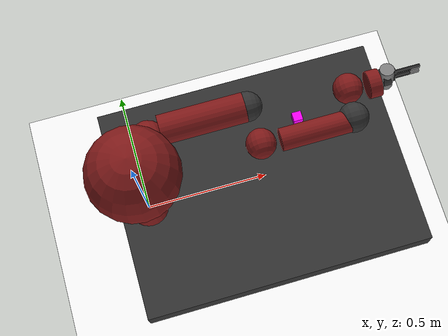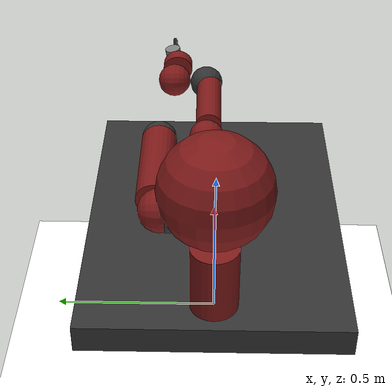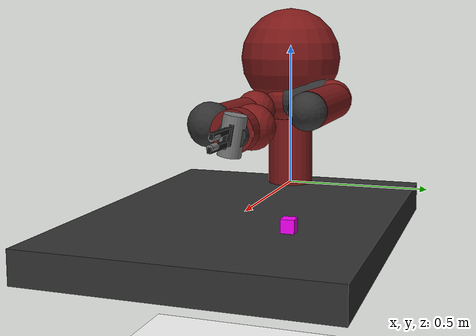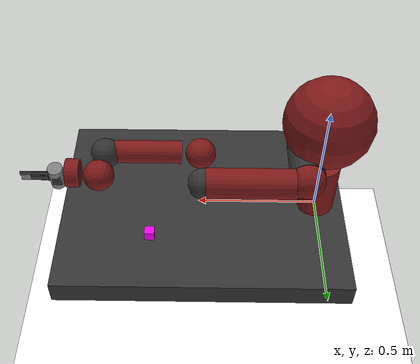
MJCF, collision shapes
<mujoco>
  <compiler angle="radian" meshdir="meshes/" />
  <asset>
    <include file="shared_assets.xml"></include>
  </asset>
  <default>
    <include file="shared.xml"></include>
  </default>
  <equality>
        <weld body1="mocap" body2="right_gripper_base" solimp="0.95 0.99 0.001" solref="0.001 1"></weld>
  </equality>

  <worldbody>
    <light directional="true" ambient="0.2 0.2 0.2" diffuse="0.8 0.8 0.8" specular="0.3 0.3 0.3" castshadow="false" pos="0 0 4" dir="0 0 -1" name="light0"></light>
    <geom name="floor0" pos="0.0 0 -0.8057" size="1.4 1.2 1" type="plane" condim="3" material="floor_mat"/>

    <include file="sawyer_robot.xml"/>
    <body mocap="true" name="mocap" pos="0.2369680365278436 0.7377722688452103 0.30233579064225752">
      <geom conaffinity="0" contype="0" pos="0 0 0" rgba="1.0 1.0 1.0 0.0" size="0.02 0.02 0.02" type="box"></geom>
    </body>

    <body name="object0" pos="0.70 0.2 0.021">
      <joint name="object0:joint" type="free" damping="0.01"></joint>
      <geom size="0.02 0.02 0.02" type="box" condim="3" name="object0" material="block_mat" mass="0.1" rgba="1 0 1 1"></geom>
    </body>

    <body name="target_pos" pos="0 0 0">
      <site name="target_pos" pos="0 0 0" size="0.02 0.02 0.02" rgba="1 0 0 1" type="sphere"></site>
    </body>
  </worldbody>

  <actuator>
    <motor gear="10" joint="r_gripper_l_finger_joint" name="slide_l_claw"/>
    <motor gear="10" joint="r_gripper_r_finger_joint" name="slide_r_claw"/>
    <motor joint="right_j0" ctrlrange="-100.0 100.0" ctrllimited="false" gear="150"/>
    <motor joint="right_j1" ctrlrange="-100.0 100.0" ctrllimited="false" gear="100"/>
    <motor joint="right_j2" ctrlrange="-100.0 100.0" ctrllimited="false" gear="120"/>
    <motor joint="right_j3" ctrlrange="-100.0 100.0" ctrllimited="false" gear="150"/>
    <motor joint="right_j4" ctrlrange="-100.0 100.0" ctrllimited="false" gear="150"/>
    <motor joint="right_j5" ctrlrange="-100.0 100.0" ctrllimited="false" gear="150"/>
    <motor joint="right_j6" ctrlrange="-100.0 100.0" ctrllimited="false" gear="150"/>
  </actuator>

</mujoco>

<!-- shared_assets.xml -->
<mujoco>
  <texture type="skybox" builtin="gradient" rgb1="0.44 0.85 0.56" rgb2="0.46 0.87 0.58" width="32" height="32"></texture>
  <material name="floor_mat" specular="0" shininess="0.5" reflectance="0" rgba="1 1 1 1"></material>
  <material name="block_mat" specular="0" shininess="0.5" reflectance="0" rgba="0.2 0.2 0.2 1"></material>
  <mesh name="base" file="base.STL" />
  <mesh name="l0" file="l0.STL" />
  <mesh name="head" file="head.STL" />
  <mesh name="l1" file="l1.STL" />
  <mesh name="l2" file="l2.STL" />
  <mesh name="l3" file="l3.STL" />
  <mesh name="l4" file="l4.STL" />
  <mesh name="l5" file="l5.STL" />
  <mesh name="l6" file="l6.STL" />
  <mesh name="half_round_tip" file="half_round_tip.STL" />
  <mesh name="electric_gripper_base" file="electric_gripper_base.STL" />
  <mesh name="extended_narrow" file="extended_narrow.STL"/>
  <mesh name="paddle_tip" file="paddle_tip.STL"/>
  <mesh name="yellow_bin_v1" file="yellow_bin_v1.STL"/>
  <mesh name="red_bin_v1" file="red_bin_v1.STL"/>
  <mesh name="green_bin_v1" file="green_bin_v1.STL"/>
  <mesh name="pedestal_table" file="pedestal_table.STL"/>
</mujoco>

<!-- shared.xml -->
<mujoco>
  <joint damping="0.2" stiffness="0" armature=".01" user="0"/>
  <geom solref="0.008 1" solimp="0.999 0.999 0." margin="0.001" user="0"/>
  <default class="viz">
    <geom contype="0" conaffinity="0" group="1" type="mesh"/>
  </default>
  <motor ctrllimited="true" ctrlrange="-1 1"/>
  <position ctrllimited="true"/>
  <default class='0'>
    <geom friction="1 0.005 0.001" rgba=".75 .6 .5 1" contype="1" conaffinity="0"/>
  </default>
  <default class='1'>
    <geom friction="1 0.005 0.001" rgba=".7 .6 .55 1" contype="1" conaffinity="0"/>
  </default>
  <default class='arm'>
    <joint damping="5"/>
  </default>
</mujoco>

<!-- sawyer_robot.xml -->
<mujoco>
    <body name="pedestal_table" pos="0.482 0 -0.05">
      <geom pos="0 0 0" quat="0.707 0 0 0.707" type="mesh" contype="0" conaffinity="0" group="1" rgba="0.2 0.2 0.2 1" mesh="pedestal_table" />
      <geom name="table" size="0.6 0.45 0.05" pos="0 0 0" type="box" rgba="0.2 0.2 0.2 0" />
    <body name="right_arm_base_link" pos="-0.482 0 0.05">
      <geom type="mesh" contype="0" conaffinity="0" group="1" rgba="0.5 0.1 0.1 1" mesh="base" />
      <geom size="0.08 0.12" pos="0 0 0.12" type="cylinder" rgba="0.5 0.1 0.1 0" />
      <body name="right_l0" pos="0 0 0.08">
        <joint name="right_j0" pos="0 0 0" axis="0 0 1" limited="true" range="-3.0503 3.0503" damping="10"/>
        <geom type="mesh" contype="0" conaffinity="0" group="1" rgba="0.5 0.1 0.1 1" mesh="l0" />
        <geom size="0.07" pos="0.08 0 0.23" rgba="0.5 0.1 0.1 0" />
        <body name="head" pos="0 0 0.2965">
          <geom type="mesh" contype="0" conaffinity="0" group="1" rgba="0.5 0.1 0.1 1" mesh="head" />
          <geom size="0.18" pos="0 0 0.08" rgba="0.5 0.1 0.1 0" />
          <body name="screen" pos="0.03 0 0.105" quat="0.5 0.5 0.5 0.5">
            <geom size="0.12 0.07 0.001" type="box" contype="0" conaffinity="0" group="1" rgba="0.2 0.2 0.2 0" />
            <geom size="0.001" rgba="0.2 0.2 0.2 0" />
          </body>
          <body name="head_camera" pos="0.0228027 0 0.216572" quat="0.342813 -0.618449 0.618449 -0.342813">
            <site name="headsite" pos="0 0 0" size="0.01" />
          </body>
        </body>
        <body name="right_torso_itb" pos="-0.055 0 0.22" quat="0.707107 0 -0.707107 0">
        </body>
        <body name="right_l1" pos="0.081 0.05 0.237" quat="0.5 -0.5 0.5 0.5">
          <joint name="right_j1" pos="0 0 0" axis="0 0 1" limited="true" range="-3.8095 2.2736" damping="10"/>
          <geom type="mesh" contype="0" conaffinity="0" group="1" rgba="0.5 0.1 0.1 1" mesh="l1" />
          <geom size="0.07" pos="0 0 0.1225" rgba="0.5 0.1 0.1 0" />
          <body name="right_l2" pos="0 -0.14 0.1425" quat="0.707107 0.707107 0 0">
            <joint name="right_j2" pos="0 0 0" axis="0 0 1" limited="true" range="-3.0426 3.0426" damping="10"/>
            <geom type="mesh" contype="0" conaffinity="0" group="1" rgba="0.5 0.1 0.1 1" mesh="l2" />
            <geom size="0.06 0.17" pos="0 0 0.08" type="cylinder" rgba="0.5 0.1 0.1 0" />
            <body name="right_l3" pos="0 -0.042 0.26" quat="0.707107 -0.707107 0 0">
              <site name="armsite" pos="0 0 0" size="0.01" />
              <joint name="right_j3" pos="0 0 0" axis="0 0 1" limited="true" range="-3.0439 3.0439" damping="10"/>
              <geom type="mesh" contype="0" conaffinity="0" group="1" rgba="0.5 0.1 0.1 1" mesh="l3" />
              <geom size="0.06" pos="0 -0.01 -0.12" rgba="0.5 0.1 0.1 0" />
              <body name="right_l4" pos="0 -0.125 -0.1265" quat="0.707107 0.707107 0 0">
                <joint name="right_j4" pos="0 0 0" axis="0 0 1" limited="true" range="-2.9761 2.9761" damping="10" />
                <geom type="mesh" contype="0" conaffinity="0" group="1" rgba="0.5 0.1 0.1 1" mesh="l4" />
                <geom size="0.045 0.15" pos="0 0 0.11" type="cylinder" rgba="0.5 0.1 0.1 0" />
                <body name="right_arm_itb" pos="-0.055 0 0.075" quat="0.707107 0 -0.707107 0">
                </body>
                <body name="right_l5" pos="0 0.031 0.275" quat="0.707107 -0.707107 0 0">
                  <joint name="right_j5" pos="0 0 0" axis="0 0 1" limited="true" range="-2.9761 2.9761" damping="10"/>
                  <geom type="mesh" contype="0" conaffinity="0" group="1" rgba="0.5 0.1 0.1 1" mesh="l5" />
                  <geom size="0.06" pos="0 0 0.1" rgba="0.5 0.1 0.1 0" />
                  <body name="right_hand_camera" pos="0.039552 -0.033 0.0695" quat="0.707107 0 0.707107 0">
                  </body>
                  <body name="right_wrist" pos="0 0 0.10541" quat="0.707107 0.707107 0 0">
                  </body>
                  <body name="right_l6" pos="0 -0.11 0.1053" quat="0.0616248 0.06163 -0.704416 0.704416">
                    <joint name="right_j6" pos="0 0 0" axis="0 0 1" limited="true" range="-4.7124 4.7124" damping="10"/>
                    <geom type="mesh" contype="0" conaffinity="0" group="1" rgba="0.5 0.1 0.1 1" mesh="l6" />
                    <geom size="0.055 0.025" pos="0 0.015 -0.01" type="cylinder" rgba="0.5 0.1 0.1 0" />
                    <body name="right_hand" pos="0 0 0.0245" quat="0.707107 0 0 0.707107">
                      <geom size="0.035 0.015" pos="0 0 0.02" type="cylinder" rgba="0.2 0.2 0.2 0"/>

<!--  ================= BEGIN GRIPPER ================= /-->
                                                        <!--site name="endeffector" pos="0 0 0" size="0.01" /-->
                                                    <!--/body-->
                                                <!--/body-->
                      <body name="right_gripper_base" pos="0 0 0.025">
                        <geom quat="0 0 0.707107 0.707107" class="viz" mesh="electric_gripper_base" />
                        <geom size="0.029 0.05" quat="0 0 0.707107 0.707107" type="cylinder" />
                        <body name="r_gripper_l_finger" pos="0 -0.0015 0.02">
                          <joint name="r_gripper_l_finger_joint" pos="0 0 0" axis="0 1 0" type="slide" range="0 0.020833" limited="true" damping="1000"/>
                          <geom class="viz" mesh="extended_narrow" euler="1.57 1.57 0" rgba="0.1 0.1 0.1 1"/>
                          <geom size="0.005 0.00675 0.05635" contype="0" pos="0 0.01725 0.0615" quat="0 0 0 -1" type="box" rgba="0.1 0.1 0.1 1"/>
                          <geom size="0.005 0.025 0.0085" contype="0" pos="-0.005 -0.003 0.0083" quat="0 0 0 -1" type="box" rgba="0.1 0.1 0.1 1"/>
                          <body name="r_gripper_l_finger_tip" pos="0 0.01725 0.1127">
                            <geom pos="-.007 -.01 0.003" class="viz" mesh="half_round_tip" euler="-1.57 0 0" friction="1 0.05 0.01"/>
                            <geom name="finger_tip_1" size="0.008 0.0185" pos="0 -0.0045 -0.015" quat="0 0 0 1" type="cylinder" friction="1 0.05 0.01"/>
                          </body>
                        </body>
                        <body name="r_gripper_r_finger" pos="0 0.0015 0.02">
                          <joint name="r_gripper_r_finger_joint" pos="0 0 0" axis="0 1 0" type="slide" range="-0.020833 0" limited="true" damping="1000"/>
                          <geom class="viz" mesh="extended_narrow" euler="1.57 -1.57 0" rgba="0.1 0.1 0.1 1"/>
                          <geom size="0.005 0.00675 0.05635" contype="0" pos="0 -0.01725 0.0615" type="box" rgba="0.1 0.1 0.1 1"/>
                          <geom size="0.005 0.025 0.0085" contype="0" pos="0.005 0.003 0.0083" type="box" rgba="0.1 0.1 0.1 1"/>
                          <body name="r_gripper_r_finger_tip" pos="0 -0.01725 0.1127">
                            <geom pos=".007 .01 0.003" class="viz" mesh="half_round_tip" euler="-1.57 3.14 0" friction="1 0.05 0.01"/>
                            <geom name="finger_tip_2" size="0.008 0.0185" pos="0 0.0045 -0.015" type="cylinder" friction="1 0.05 0.01"/>
                          </body>
                        </body>
                        <site name="grip" pos="0 0 0" rgba="0 0 0 0" size="0.02 0.02 0.02"></site>
                      </body>
<!--  ================= END GRIPPER ================= /-->

                    </body>
                  </body>
                </body>
                <body name="right_l4_2" pos="0 0 0">
                  <geom size="0.06" pos="0 0.01 0.26" rgba="0.2 0.2 0.2 0"/>
                </body>
              </body>
            </body>
            <body name="right_l2_2" pos="0 0 0">
              <geom size="0.06" pos="0 0 0.26" rgba="0.2 0.2 0.2 0"/>
            </body>
          </body>
          <body name="right_l1_2" pos="0 0 0">
            <geom size="0.07 0.07" pos="0 0 0.035" type="cylinder" rgba="0.2 0.2 0.2 0"/>
          </body>
        </body>
      </body>
    </body>
  </body>
</mujoco>
